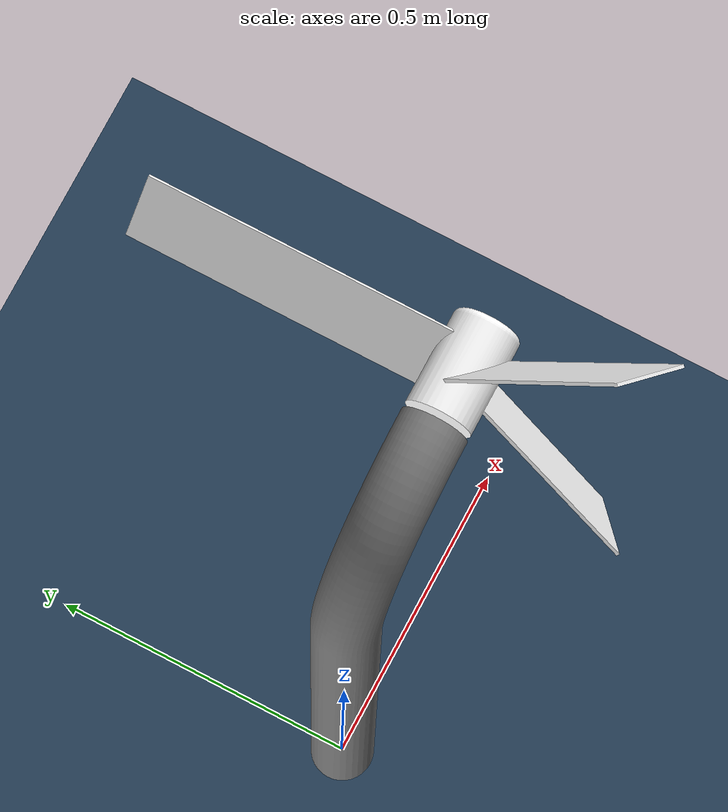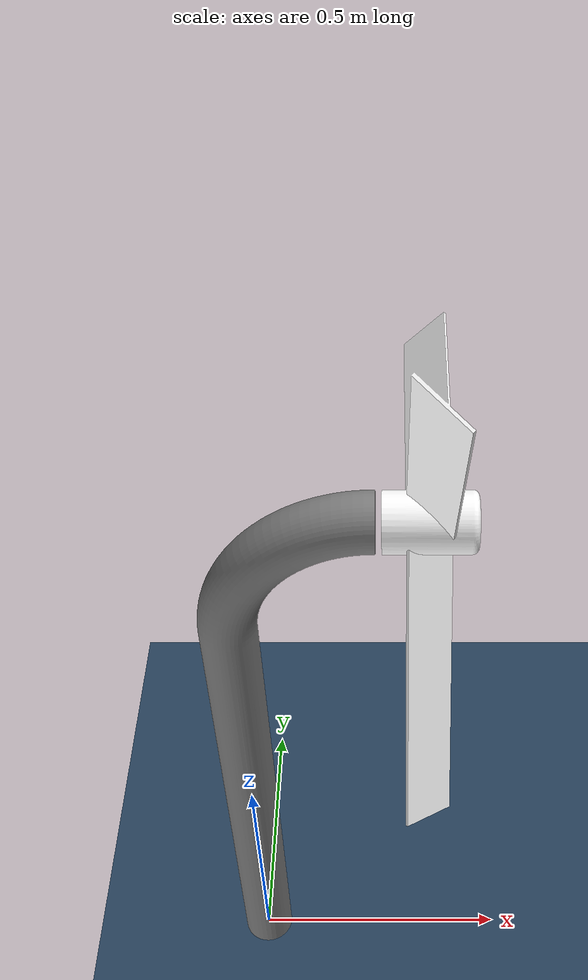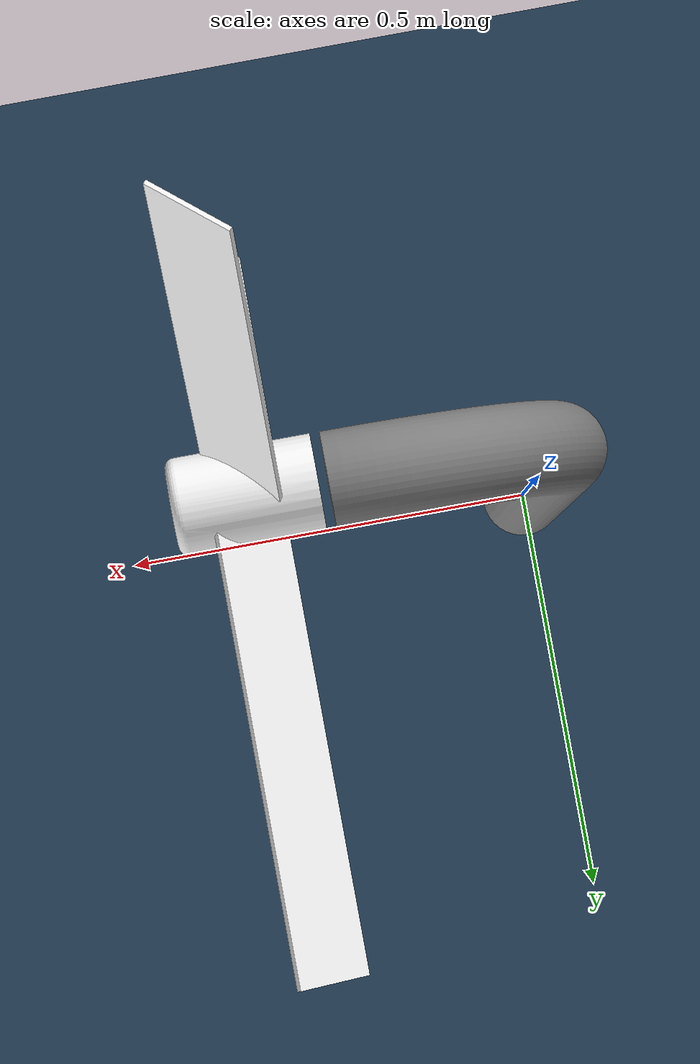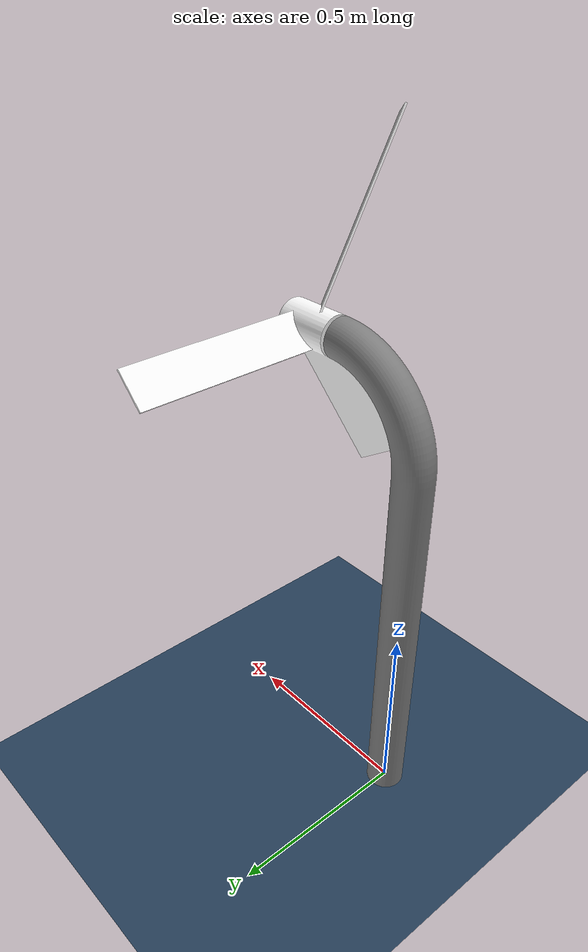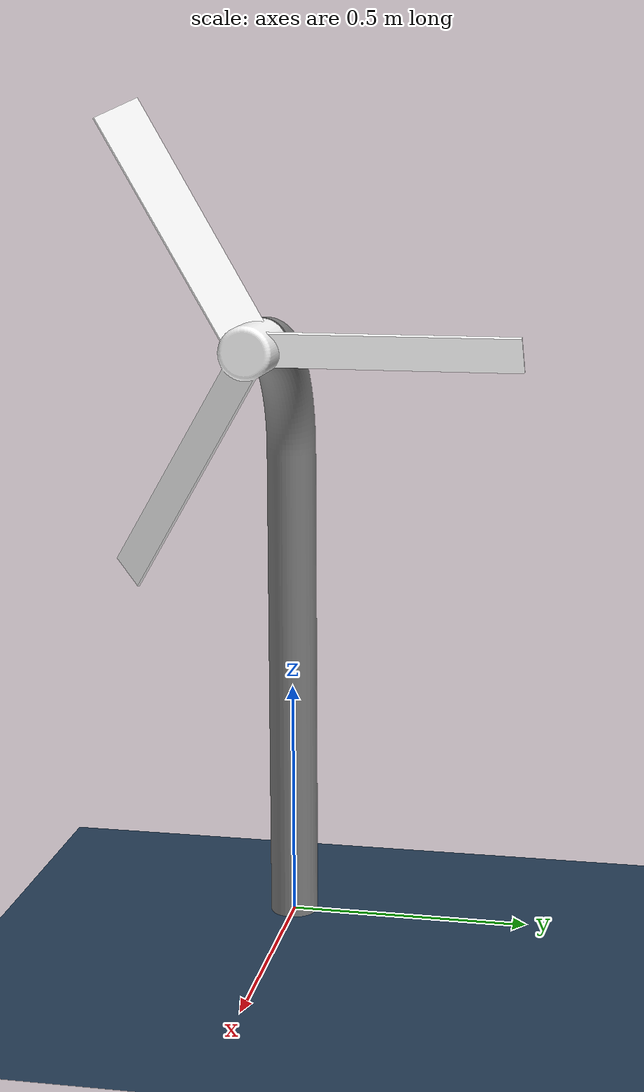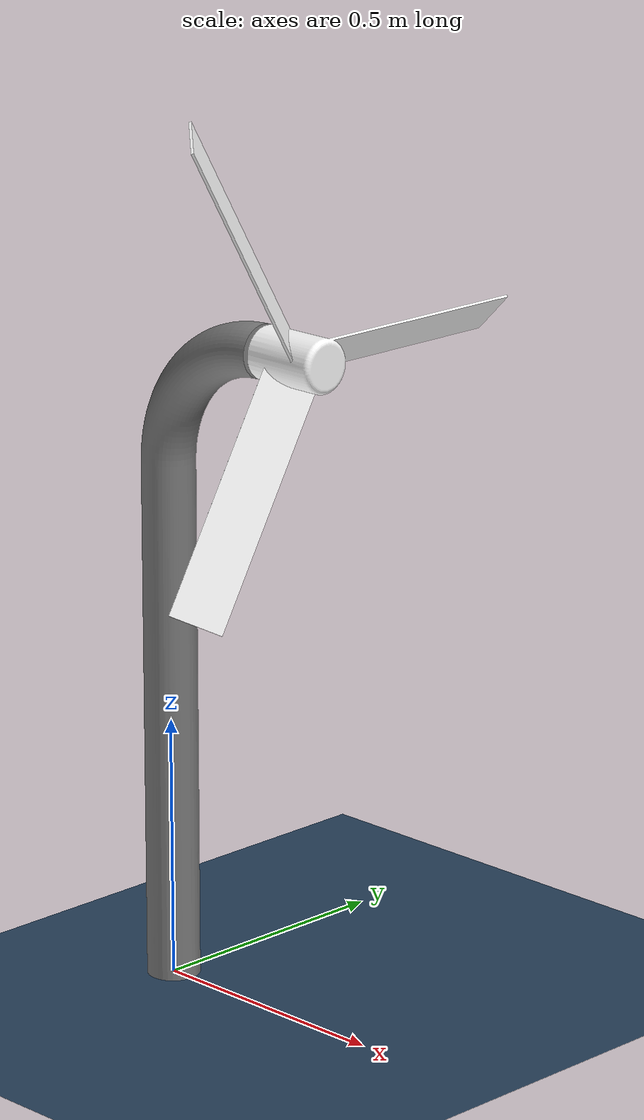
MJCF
<mujoco model="Wind Turbine">

	<asset>
		<texture name="grid" type="2d" builtin="checker" width="512" height="512" rgb1=".1 .2 .3" rgb2=".2 .3 .4"/>
		<material name="grid" texture="grid" texrepeat="1 1" texuniform="true" reflectance=".2"/>
		<mesh name="base" file="base.stl" scale="1.0 1.0 1.0"/>
		<mesh name="blades" file="blades.stl" scale="1.0 1.0 1.0"/>
	</asset>

	<option wind="-10000 0 0" density="1000"/>

	<worldbody>
		<geom name="ground" type="plane" size="0 0 0.1" material="grid"/>
		<geom type="mesh" mesh="base" rgba="0.5 0.5 0.5 1"/>
		<light directional="false" pos="0 0 30" dir="0 0 -1" diffuse="1 1 1" active="true"/>

		<body pos="0.26 0.00 1.25" xyaxes="0 1 0 1 0 0">
			<joint name="revolute" type="hinge" pos="0 0 0" axis="0 1 0"/>
			<geom type="mesh" mesh="blades" density="100" friction="0" rgba="1 1 1 1"/>
		</body>

	</worldbody>

	<actuator>
		<motor joint="revolute" ctrlrange="-10 +10"/>
	</actuator>

</mujoco>
